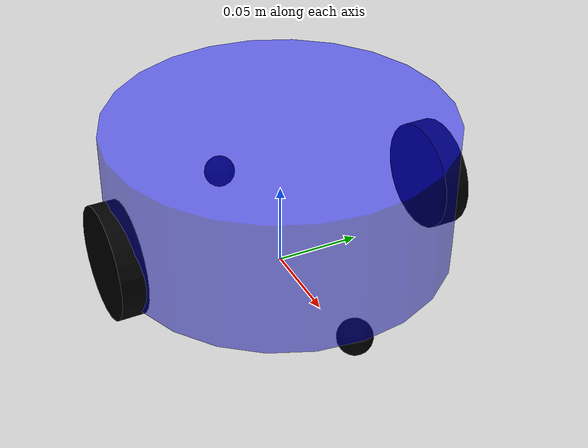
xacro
<robot xmlns:xacro="http://www.ros.org/wiki/xacro" name="mycar">
    <!-- 参数定义 -->
    <xacro:property name="footprint_radius" value="0.001" />
    <xacro:property name="base_link_r" value="0.1" />
    <xacro:property name="base_link_l" value="0.08" />
    <xacro:property name="base2ground_hight" value="0.015" />
    <xacro:property name="base_link_z" value="${base2ground_hight + base_link_l / 2 }" />

    <xacro:property name="base_link_m" value="0.5" />

    <material name="black">
        <color rgba="0.0 0.0 0.0 1.0"/>
    </material>

    <!-- 设置原点 -->
    <link name="base_footprint">
        <visual>
            <geometry>
                <sphere radius="${footprint_radius}" />
            </geometry>
        </visual>
    </link>

    <!-- 底盘 -->
    <link name="base_link">
        <visual>
            <geometry>
                <cylinder radius="${base_link_r}" length="${base_link_l}"/>
            </geometry>
            <origin xyz="0 0 0" rpy="0 0 0" />
            <material name="blue">
                <color rgba="0 0 1.0 0.5" />
            </material>
        </visual>

        <collision>
            <geometry>
                <cylinder radius="${base_link_r}" length="${base_link_l}"/>
            </geometry>
            <origin xyz="0 0 0" rpy="0 0 0" />
        </collision>
        <xacro:cylinder_inertial_matrix m="${base_link_m}" r="${base_link_r}" h="${base_link_l}" />
    </link>

    <gazebo reference="base_link">
        <material>
            Gazebo/Yellow
        </material>
    </gazebo>

    <!-- 原点与底盘连接 -->
    <joint name="base_link2base_footprint" type="fixed">
        <parent link="base_footprint" />
        <child link="base_link" />
        <origin xyz="0 0 ${base_link_z}" />
    </joint>

    <!-- 驱动轮 -->
    <xacro:property name="move_wheel_r" value="0.0325"/>
    <xacro:property name="move_wheel_l" value="0.015"/>
    <xacro:property name="move_wheel_m" value="0.05"/>

    <!-- 宏定义 -->
    <xacro:macro name="addMoveWheel" params="name flag">
        <link name="${name}_MoveWheel">
            <visual>
                <geometry>
                    <cylinder radius="${move_wheel_r}" length="${move_wheel_l}"/>
                </geometry>
                <origin xyz="0.0 0.0 0.0" rpy="${pi / 2} 0.0 0.0"/>
                <material name="black"/>
            </visual>
            <collision>
                <geometry>
                    <cylinder radius="${move_wheel_r}" length="${move_wheel_l}"/>
                </geometry>
                <origin xyz="0.0 0.0 0.0" rpy="${pi / 2} 0.0 0.0"/>
            </collision>
            <xacro:cylinder_inertial_matrix m="${move_wheel_m}" r="${move_wheel_r}" h="${move_wheel_l}" />
        </link>

        <gazebo reference="${name}_MoveWheel">
            <material>Gazebo/Red</material>
        </gazebo>

        <joint name="${name}_MoveWheel2base_link" type="continuous">
            <parent link="base_link"/>
            <child link="${name}_MoveWheel"/>
            <origin xyz="0 ${flag * base_link_r} ${-(base_link_z - move_wheel_r)}"/>
            <axis xyz="0 1 0"/>
        </joint>
    </xacro:macro>

    <xacro:addMoveWheel name="left" flag="1"/>
    <xacro:addMoveWheel name="right" flag="-1"/>

    <!-- 支撑轮 -->
    <xacro:property name="support_wheel_r" value="0.01"/>
    <xacro:property name="support_wheel_m" value="0.03"/>

    <xacro:macro name="addSupportWheel" params="name flag">
        <link name="${name}_SupportWheel">
            <visual>
                <geometry>
                    <sphere radius="${support_wheel_r}"/>
                </geometry>
                <origin xyz="0.0 0.0 0.0" rpy="0.0 0.0 0.0"/>
                <material name="black"/>
            </visual>
            <collision>
                <geometry>
                    <sphere radius="${support_wheel_r}"/>
                </geometry>
                <origin xyz="0.0 0.0 0.0" rpy="0.0 0.0 0.0"/>
            </collision>
            <xacro:sphere_inertial_matrix m="${support_wheel_m}" r="${support_wheel_r}" />
        </link>

        <gazebo reference="${name}_SupportWheel">
            <material>Gazebo/Red</material>
        </gazebo>

        <joint name="${name}_SupportWheel2base_link" type="continuous">
            <parent link="base_link"/>
            <child link="${name}_SupportWheel"/>
            <origin xyz="${flag * (base_link_r - support_wheel_r)} 0.0 ${-(base_link_z - support_wheel_r)}"/>
            <axis xyz="1 1 1"/>
        </joint>
    </xacro:macro>
    <xacro:addSupportWheel name="front" flag="1" />
    <xacro:addSupportWheel name="back" flag="-1" />
</robot>
